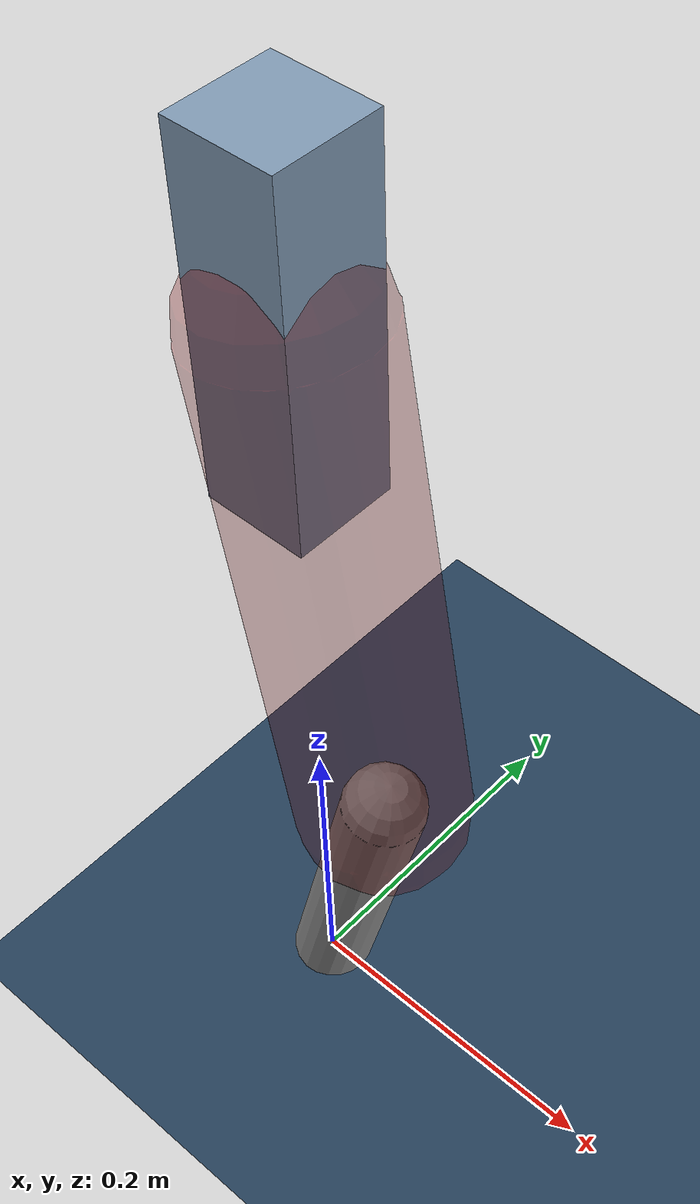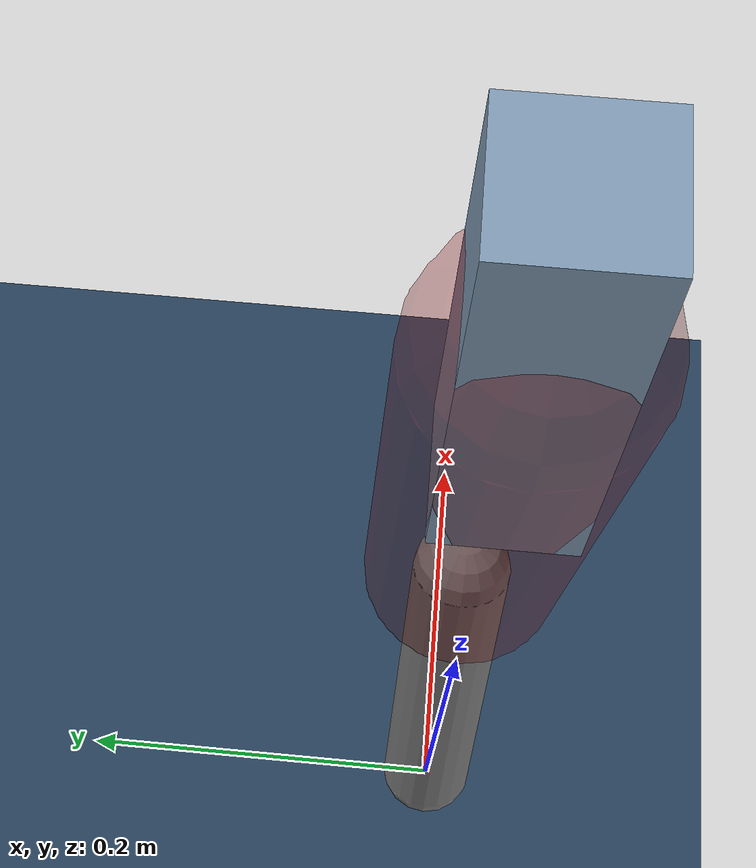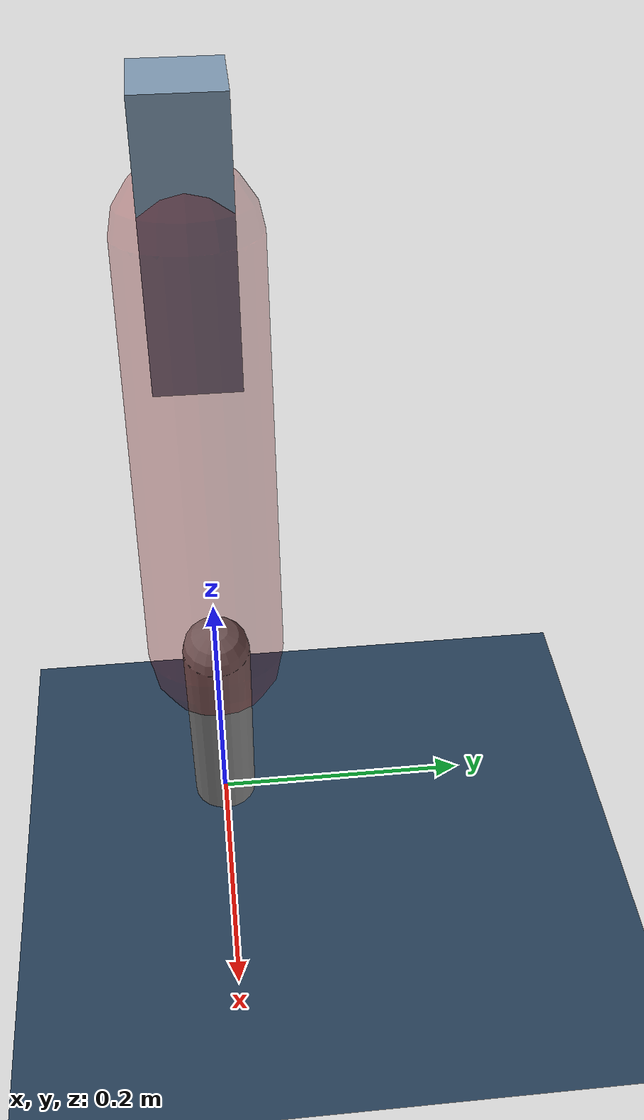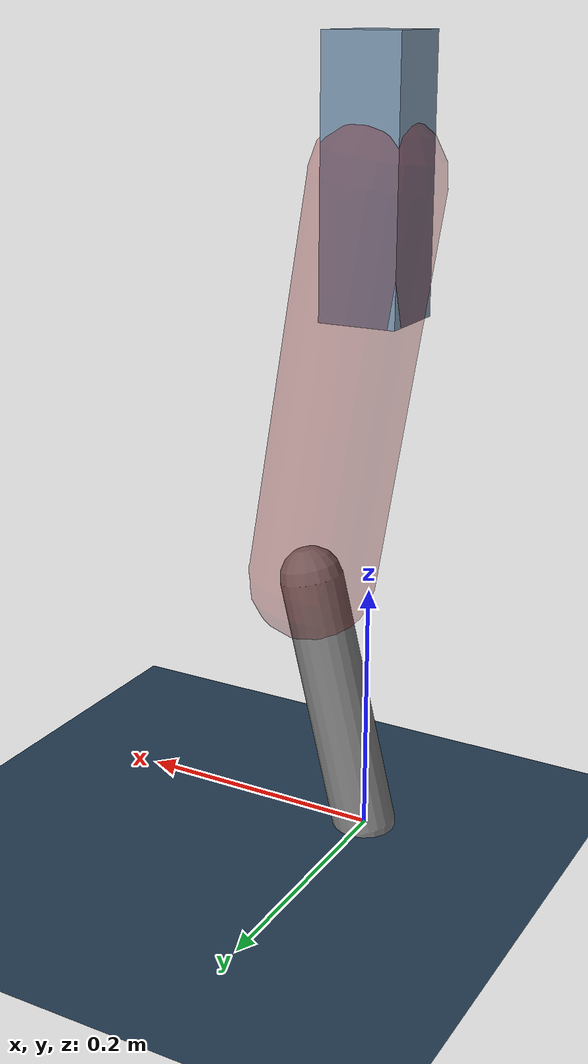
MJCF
<mujoco model="Hopper2D">
	<compiler inertiafromgeom="true" angle="radian" />
	<option timestep="0.001" integrator="implicit" cone="elliptic" solver="Newton" tolerance="1e-10" />

	<default>
		<geom contype="1" conaffinity="1" condim="3" friction="2 0.005 0.0001" solref="0.005 1" />
		<joint limited="true" damping="0.1" />
	</default>

	<asset>
		<texture name="skybox" type="skybox" builtin="gradient" rgb1=".4 .6 .8" rgb2="0 0 0" width="800" height="800" />
		<texture name="grid" type="2d" builtin="checker" rgb1=".1 .2 .3" rgb2=".2 .3 .4" width="300" height="300" mark="edge" markrgb=".2 .3 .4" />
		<material name="ground" texture="grid" texrepeat="1 1" texuniform="true" reflectance="0.1" />
		<material name="leg" rgba="0.5 0.6 0.7 1" />
	</asset>

	<worldbody>

		<geom name="floor" type="plane" size="5 5 0.25" material="ground" />

		<light directional="false" diffuse="0.8 0.8 0.8" specular="0.3 0.3 0.3" pos="0 0 2" dir="0 0 -1" />
		<light mode="targetbodycom" target="base" directional="false" diffuse="0.8 0.8 0.8" specular="0.3 0.3 0.3" pos="0 0 2" dir="0 0 -1" />

		<camera name="fixed" pos="0 -2 1" xyaxes="1 0 0 0 0 1" />
		<camera name="tracking" mode="trackcom" pos="0 -3 1" />

		<body name="root" pos="0 0 0.5099722231025239">
			<joint name="slide_x" type="slide" axis="1 0 0" range="-100 100" />
			<joint name="slide_z" type="slide" axis="0 0 1" range="0 10" />

			<body name="base" pos="0 0 0">
				<geom name="torso" type="box" size="0.03 0.03 0.1" mass="2.442" material="leg" />

				<body name="link1" pos="0 0 0" euler="0 1.4113547381525913 0">
					<joint type="hinge" axis="0 -1 0" pos="0 0 0" name="hinge1" limited="true" range="-3.14 3.14" stiffness="0" damping="0.1" />
					<geom name="thigh" type="capsule" fromto="0 0 0 0.3127025024469188 0 0" size="0.05" rgba="0.5 0 0 0.3" mass="1.0232670068513725" />

					<body name="link2" pos="0.3127025024469188 0 0" euler="0 0.40132079216106364 0">
						<joint type="hinge" axis="0 -1 0" pos="0 0 0" name="hinge2" limited="true" range="-3.14 3.14" stiffness="0" damping="0.1" />
						<geom name="shank" type="capsule" fromto="0 0 0 0.20726972065560506 0 0" size="0.025" mass="0.40701577652448406" />

					</body>
				</body>
			</body>
		</body>
	</worldbody>

	<actuator>
		<motor name="torque1" joint="hinge1" ctrlrange="-87.17427272672609 87.17427272672609" ctrllimited="true" gear="1" />
		<motor name="torque2" joint="hinge2" ctrlrange="-77.61913076144957 77.61913076144957" ctrllimited="true" gear="1" />
	</actuator>
</mujoco>
